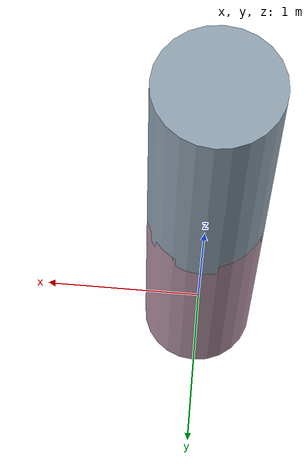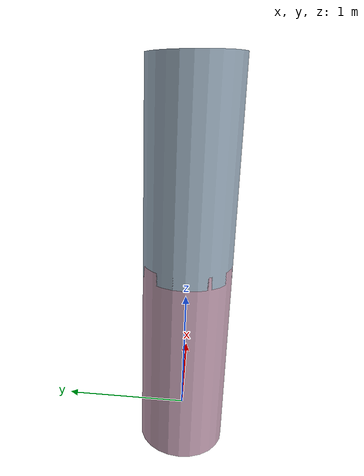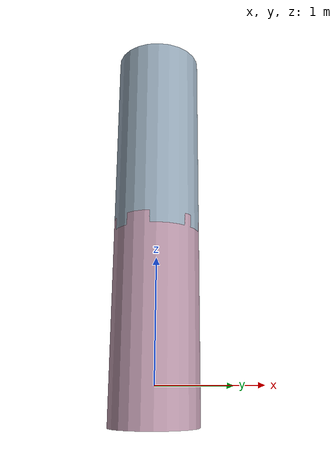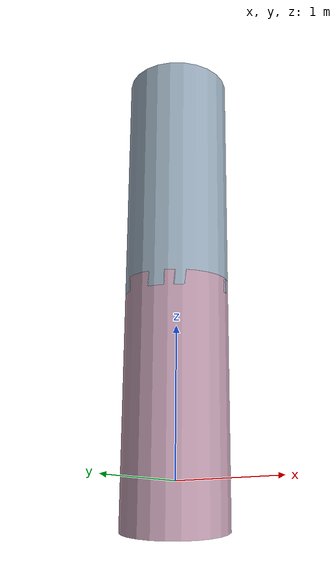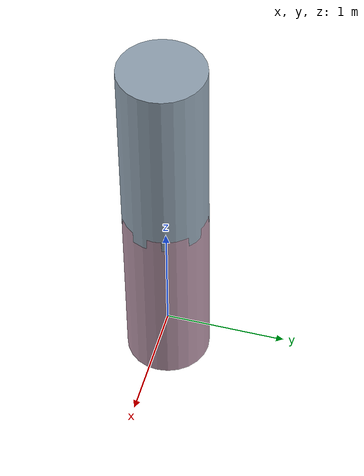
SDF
<?xml version="1.0"?>
<sdf version="1.6">
  <model name="cylinders">
    <static>false</static>

    <!-- First Cylinder (Pink) -->
    <link name="cylinder1">
      <pose>0 0 0.5 0 0 0</pose>  <!-- Initial position -->
      <visual name="visual1">
        <geometry><cylinder><radius>0.35</radius><length>1.6</length></cylinder></geometry>
        <material>
          <ambient>0.7 0.0 0.35 1.0</ambient>  <!-- Darker pink -->
          <diffuse>0.7 0.57 0.64 1.0</diffuse>   <!-- Less bright -->
          <specular>0.1 0.1 0.1 1.0</specular>   <!-- Low reflectivity -->
          <emissive>0.0 0.0 0.0 1.0</emissive>
        </material>
      </visual>
      <collision name="collision1">
        <geometry>
          <cylinder><radius>0.35</radius><length>1.6</length></cylinder>
        </geometry>
        <surface>
          <contact>
            <ode>
              <min_depth>0.01</min_depth>  <!-- Ensures LiDAR detects small objects -->
            </ode>
          </contact>
        </surface>
    </collision>
    </link>

    <!-- Second Cylinder (Blue) -->
    <link name="cylinder2">
      <pose>0 0 2.0 0 0 0</pose>  <!-- Initial position -->
      <visual name="visual2">
        <geometry><cylinder><radius>0.35</radius><length>1.6</length></cylinder></geometry>
        <material>
          <ambient>0.0 0.35 0.7 1.0</ambient>    <!-- Darker blue -->
          <diffuse>0.57 0.64 0.7 1.0</diffuse>    <!-- Less bright -->
          <specular>0.1 0.1 0.1 1.0</specular>    <!-- Low reflectivity -->
          <emissive>0.0 0.0 0.0 1.0</emissive>
        </material>
      </visual>
      <collision name="collision2">
        <geometry>
          <cylinder><radius>0.35</radius><length>1.6</length></cylinder>
        </geometry>
        <surface>
          <contact>
            <ode>
              <min_depth>0.01</min_depth>  <!-- Ensures LiDAR detects small objects -->
            </ode>
          </contact>
        </surface>
    </collision>
    </link>

    <!-- third Cylinder (green) -->
    <link name="cylinder3">
      <pose>0 0 2.0 0 0 0</pose>  <!-- Initial position -->
      <visual name="visual3">
        <geometry><cylinder><radius>0.35</radius><length>1.6</length></cylinder></geometry>
        <material>
          <ambient>0.0 0.35 0.0 1.0</ambient>    <!-- Darker green -->
          <diffuse>0.2 0.7 0.2 1.0</diffuse>      <!-- Medium green -->
          <specular>0.1 0.1 0.1 1.0</specular>    <!-- Low reflectivity -->
          <emissive>0.0 0.0 0.0 1.0</emissive>
        </material>
      </visual>
      <collision name="collision3">
        <geometry>
          <cylinder><radius>0.35</radius><length>1.6</length></cylinder>
        </geometry>
        <surface>
          <contact>
            <ode>
              <min_depth>0.01</min_depth>  <!-- Ensures LiDAR detects small objects -->
            </ode>
          </contact>
        </surface>
    </collision>
    </link>
  </model>
</sdf>
